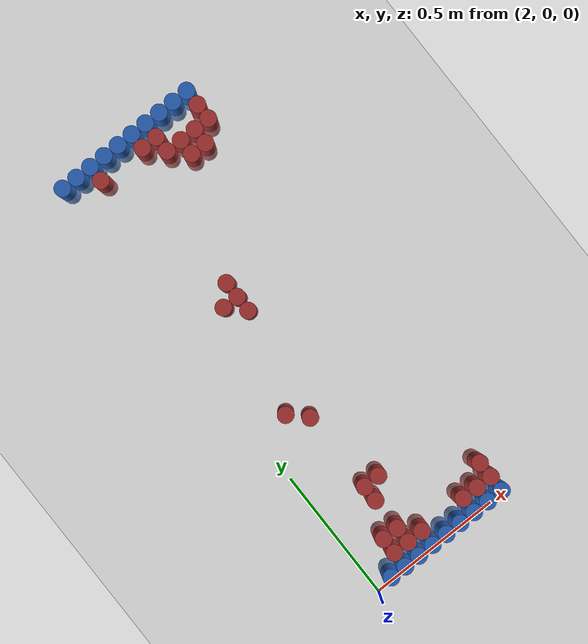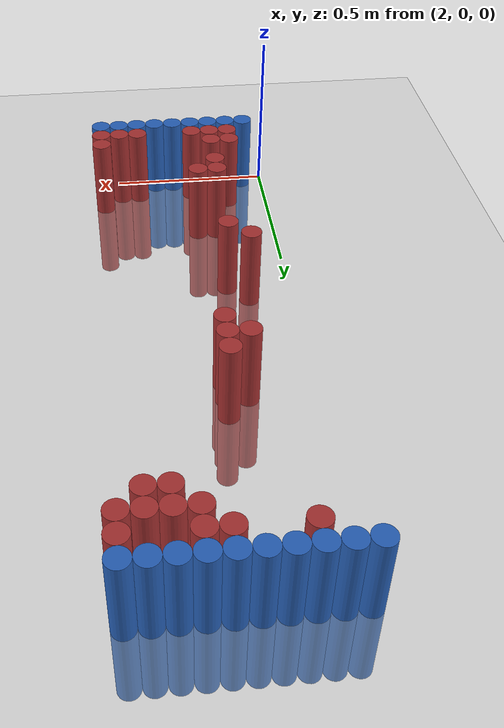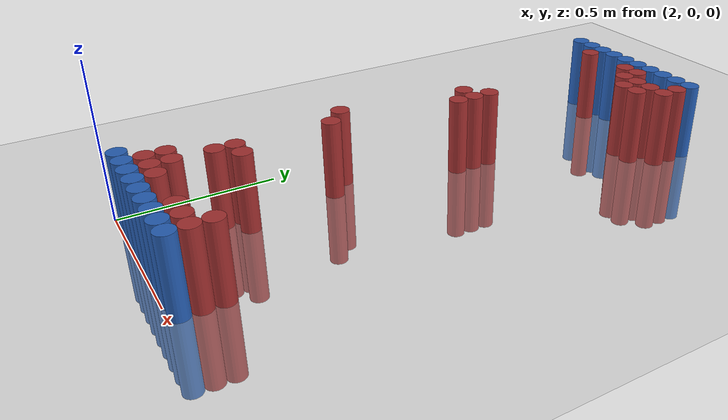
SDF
<sdf version="1.6">
 <world name="default">
  <model name="ground_plane">
   <static>1</static>
   <link name="link">
    <collision name="collision">
     <geometry><plane><normal>0 0 1</normal><size>100 100</size></plane></geometry>
     <surface><friction><ode><mu>100</mu><mu2>50</mu2></ode></friction></surface>
    </collision>
    <visual name="visual">
     <cast_shadows>0</cast_shadows>
     <geometry><plane><normal>0 0 1</normal><size>100 100</size></plane></geometry>
     <material>
      <script><uri>file://media/materials/scripts/gazebo.material</uri><name>Gazebo/Grey</name></script>
     </material>
    </visual>
   </link>
  </model>
  <model name="unit_cylinder_94">
   <static>1</static>
   <pose>2.010000 1.770000 0.000000 0.000000 0.000000 0.000000</pose>
   <link name="link">
    <inertial>
     <mass>1</mass>
     <inertia><ixx>0.145833</ixx><ixy>0</ixy><ixz>0</ixz><iyy>0.145833</iyy><iyz>0</iyz><izz>0.125</izz></inertia>
    </inertial>
    <collision name="collision">
     <geometry><cylinder><radius>0.030000</radius><length>0.5</length></cylinder></geometry>
    </collision>
    <visual name="visual">
     <geometry><cylinder><radius>0.030000</radius><length>0.5</length></cylinder></geometry>
     <material>
      <ambient>0.152000 0.379000 0.720000 1</ambient>
      <diffuse>0.152000 0.379000 0.720000 1</diffuse>
     </material>
     <material>
      <script><name>Gazebo/Grey</name><uri>file://media/materials/scripts/gazebo.material</uri></script>
     </material>
    </visual>
   </link>
  </model>
  <model name="unit_cylinder_95">
   <static>1</static>
   <pose>2.070000 1.770000 0.000000 0.000000 0.000000 0.000000</pose>
   <link name="link">
    <inertial>
     <mass>1</mass>
     <inertia><ixx>0.145833</ixx><ixy>0</ixy><ixz>0</ixz><iyy>0.145833</iyy><iyz>0</iyz><izz>0.125</izz></inertia>
    </inertial>
    <collision name="collision">
     <geometry><cylinder><radius>0.030000</radius><length>0.5</length></cylinder></geometry>
    </collision>
    <visual name="visual">
     <geometry><cylinder><radius>0.030000</radius><length>0.5</length></cylinder></geometry>
     <material>
      <ambient>0.152000 0.379000 0.720000 1</ambient>
      <diffuse>0.152000 0.379000 0.720000 1</diffuse>
     </material>
     <material>
      <script><name>Gazebo/Grey</name><uri>file://media/materials/scripts/gazebo.material</uri></script>
     </material>
    </visual>
   </link>
  </model>
  <model name="unit_cylinder_96">
   <static>1</static>
   <pose>2.130000 1.770000 0.000000 0.000000 0.000000 0.000000</pose>
   <link name="link">
    <inertial>
     <mass>1</mass>
     <inertia><ixx>0.145833</ixx><ixy>0</ixy><ixz>0</ixz><iyy>0.145833</iyy><iyz>0</iyz><izz>0.125</izz></inertia>
    </inertial>
    <collision name="collision">
     <geometry><cylinder><radius>0.030000</radius><length>0.5</length></cylinder></geometry>
    </collision>
    <visual name="visual">
     <geometry><cylinder><radius>0.030000</radius><length>0.5</length></cylinder></geometry>
     <material>
      <ambient>0.152000 0.379000 0.720000 1</ambient>
      <diffuse>0.152000 0.379000 0.720000 1</diffuse>
     </material>
     <material>
      <script><name>Gazebo/Grey</name><uri>file://media/materials/scripts/gazebo.material</uri></script>
     </material>
    </visual>
   </link>
  </model>
  <model name="unit_cylinder_97">
   <static>1</static>
   <pose>2.190000 1.770000 0.000000 0.000000 0.000000 0.000000</pose>
   <link name="link">
    <inertial>
     <mass>1</mass>
     <inertia><ixx>0.145833</ixx><ixy>0</ixy><ixz>0</ixz><iyy>0.145833</iyy><iyz>0</iyz><izz>0.125</izz></inertia>
    </inertial>
    <collision name="collision">
     <geometry><cylinder><radius>0.030000</radius><length>0.5</length></cylinder></geometry>
    </collision>
    <visual name="visual">
     <geometry><cylinder><radius>0.030000</radius><length>0.5</length></cylinder></geometry>
     <material>
      <ambient>0.152000 0.379000 0.720000 1</ambient>
      <diffuse>0.152000 0.379000 0.720000 1</diffuse>
     </material>
     <material>
      <script><name>Gazebo/Grey</name><uri>file://media/materials/scripts/gazebo.material</uri></script>
     </material>
    </visual>
   </link>
  </model>
  <model name="unit_cylinder_98">
   <static>1</static>
   <pose>2.250000 1.770000 0.000000 0.000000 0.000000 0.000000</pose>
   <link name="link">
    <inertial>
     <mass>1</mass>
     <inertia><ixx>0.145833</ixx><ixy>0</ixy><ixz>0</ixz><iyy>0.145833</iyy><iyz>0</iyz><izz>0.125</izz></inertia>
    </inertial>
    <collision name="collision">
     <geometry><cylinder><radius>0.030000</radius><length>0.5</length></cylinder></geometry>
    </collision>
    <visual name="visual">
     <geometry><cylinder><radius>0.030000</radius><length>0.5</length></cylinder></geometry>
     <material>
      <ambient>0.152000 0.379000 0.720000 1</ambient>
      <diffuse>0.152000 0.379000 0.720000 1</diffuse>
     </material>
     <material>
      <script><name>Gazebo/Grey</name><uri>file://media/materials/scripts/gazebo.material</uri></script>
     </material>
    </visual>
   </link>
  </model>
  <model name="unit_cylinder_99">
   <static>1</static>
   <pose>2.310000 1.770000 0.000000 0.000000 0.000000 0.000000</pose>
   <link name="link">
    <inertial>
     <mass>1</mass>
     <inertia><ixx>0.145833</ixx><ixy>0</ixy><ixz>0</ixz><iyy>0.145833</iyy><iyz>0</iyz><izz>0.125</izz></inertia>
    </inertial>
    <collision name="collision">
     <geometry><cylinder><radius>0.030000</radius><length>0.5</length></cylinder></geometry>
    </collision>
    <visual name="visual">
     <geometry><cylinder><radius>0.030000</radius><length>0.5</length></cylinder></geometry>
     <material>
      <ambient>0.152000 0.379000 0.720000 1</ambient>
      <diffuse>0.152000 0.379000 0.720000 1</diffuse>
     </material>
     <material>
      <script><name>Gazebo/Grey</name><uri>file://media/materials/scripts/gazebo.material</uri></script>
     </material>
    </visual>
   </link>
  </model>
  <model name="unit_cylinder_100">
   <static>1</static>
   <pose>2.370000 1.770000 0.000000 0.000000 0.000000 0.000000</pose>
   <link name="link">
    <inertial>
     <mass>1</mass>
     <inertia><ixx>0.145833</ixx><ixy>0</ixy><ixz>0</ixz><iyy>0.145833</iyy><iyz>0</iyz><izz>0.125</izz></inertia>
    </inertial>
    <collision name="collision">
     <geometry><cylinder><radius>0.030000</radius><length>0.5</length></cylinder></geometry>
    </collision>
    <visual name="visual">
     <geometry><cylinder><radius>0.030000</radius><length>0.5</length></cylinder></geometry>
     <material>
      <ambient>0.152000 0.379000 0.720000 1</ambient>
      <diffuse>0.152000 0.379000 0.720000 1</diffuse>
     </material>
     <material>
      <script><name>Gazebo/Grey</name><uri>file://media/materials/scripts/gazebo.material</uri></script>
     </material>
    </visual>
   </link>
  </model>
  <model name="unit_cylinder_101">
   <static>1</static>
   <pose>2.430000 1.770000 0.000000 0.000000 0.000000 0.000000</pose>
   <link name="link">
    <inertial>
     <mass>1</mass>
     <inertia><ixx>0.145833</ixx><ixy>0</ixy><ixz>0</ixz><iyy>0.145833</iyy><iyz>0</iyz><izz>0.125</izz></inertia>
    </inertial>
    <collision name="collision">
     <geometry><cylinder><radius>0.030000</radius><length>0.5</length></cylinder></geometry>
    </collision>
    <visual name="visual">
     <geometry><cylinder><radius>0.030000</radius><length>0.5</length></cylinder></geometry>
     <material>
      <ambient>0.152000 0.379000 0.720000 1</ambient>
      <diffuse>0.152000 0.379000 0.720000 1</diffuse>
     </material>
     <material>
      <script><name>Gazebo/Grey</name><uri>file://media/materials/scripts/gazebo.material</uri></script>
     </material>
    </visual>
   </link>
  </model>
  <model name="unit_cylinder_102">
   <static>1</static>
   <pose>2.490000 1.770000 0.000000 0.000000 0.000000 0.000000</pose>
   <link name="link">
    <inertial>
     <mass>1</mass>
     <inertia><ixx>0.145833</ixx><ixy>0</ixy><ixz>0</ixz><iyy>0.145833</iyy><iyz>0</iyz><izz>0.125</izz></inertia>
    </inertial>
    <collision name="collision">
     <geometry><cylinder><radius>0.030000</radius><length>0.5</length></cylinder></geometry>
    </collision>
    <visual name="visual">
     <geometry><cylinder><radius>0.030000</radius><length>0.5</length></cylinder></geometry>
     <material>
      <ambient>0.152000 0.379000 0.720000 1</ambient>
      <diffuse>0.152000 0.379000 0.720000 1</diffuse>
     </material>
     <material>
      <script><name>Gazebo/Grey</name><uri>file://media/materials/scripts/gazebo.material</uri></script>
     </material>
    </visual>
   </link>
  </model>
  <model name="unit_cylinder_103">
   <static>1</static>
   <pose>2.550000 1.770000 0.000000 0.000000 0.000000 0.000000</pose>
   <link name="link">
    <inertial>
     <mass>1</mass>
     <inertia><ixx>0.145833</ixx><ixy>0</ixy><ixz>0</ixz><iyy>0.145833</iyy><iyz>0</iyz><izz>0.125</izz></inertia>
    </inertial>
    <collision name="collision">
     <geometry><cylinder><radius>0.030000</radius><length>0.5</length></cylinder></geometry>
    </collision>
    <visual name="visual">
     <geometry><cylinder><radius>0.030000</radius><length>0.5</length></cylinder></geometry>
     <material>
      <ambient>0.152000 0.379000 0.720000 1</ambient>
      <diffuse>0.152000 0.379000 0.720000 1</diffuse>
     </material>
     <material>
      <script><name>Gazebo/Grey</name><uri>file://media/materials/scripts/gazebo.material</uri></script>
     </material>
    </visual>
   </link>
  </model>
  <model name="unit_cylinder_125">
   <static>1</static>
   <pose>2.130000 1.710000 0.000000 0.000000 0.000000 0.000000</pose>
   <link name="link">
    <inertial>
     <mass>1</mass>
     <inertia><ixx>0.145833</ixx><ixy>0</ixy><ixz>0</ixz><iyy>0.145833</iyy><iyz>0</iyz><izz>0.125</izz></inertia>
    </inertial>
    <collision name="collision">
     <geometry><cylinder><radius>0.030000</radius><length>0.5</length></cylinder></geometry>
    </collision>
    <visual name="visual">
     <geometry><cylinder><radius>0.030000</radius><length>0.5</length></cylinder></geometry>
     <material>
      <ambient>0.648000 0.192000 0.192000 1</ambient>
      <diffuse>0.648000 0.192000 0.192000 1</diffuse>
     </material>
     <material>
      <script><name>Gazebo/Grey</name><uri>file://media/materials/scripts/gazebo.material</uri></script>
     </material>
    </visual>
   </link>
  </model>
  <model name="unit_cylinder_126">
   <static>1</static>
   <pose>2.310000 1.710000 0.000000 0.000000 0.000000 0.000000</pose>
   <link name="link">
    <inertial>
     <mass>1</mass>
     <inertia><ixx>0.145833</ixx><ixy>0</ixy><ixz>0</ixz><iyy>0.145833</iyy><iyz>0</iyz><izz>0.125</izz></inertia>
    </inertial>
    <collision name="collision">
     <geometry><cylinder><radius>0.030000</radius><length>0.5</length></cylinder></geometry>
    </collision>
    <visual name="visual">
     <geometry><cylinder><radius>0.030000</radius><length>0.5</length></cylinder></geometry>
     <material>
      <ambient>0.648000 0.192000 0.192000 1</ambient>
      <diffuse>0.648000 0.192000 0.192000 1</diffuse>
     </material>
     <material>
      <script><name>Gazebo/Grey</name><uri>file://media/materials/scripts/gazebo.material</uri></script>
     </material>
    </visual>
   </link>
  </model>
  <model name="unit_cylinder_127">
   <static>1</static>
   <pose>2.370000 1.710000 0.000000 0.000000 0.000000 0.000000</pose>
   <link name="link">
    <inertial>
     <mass>1</mass>
     <inertia><ixx>0.145833</ixx><ixy>0</ixy><ixz>0</ixz><iyy>0.145833</iyy><iyz>0</iyz><izz>0.125</izz></inertia>
    </inertial>
    <collision name="collision">
     <geometry><cylinder><radius>0.030000</radius><length>0.5</length></cylinder></geometry>
    </collision>
    <visual name="visual">
     <geometry><cylinder><radius>0.030000</radius><length>0.5</length></cylinder></geometry>
     <material>
      <ambient>0.648000 0.192000 0.192000 1</ambient>
      <diffuse>0.648000 0.192000 0.192000 1</diffuse>
     </material>
     <material>
      <script><name>Gazebo/Grey</name><uri>file://media/materials/scripts/gazebo.material</uri></script>
     </material>
    </visual>
   </link>
  </model>
  <model name="unit_cylinder_128">
   <static>1</static>
   <pose>2.550000 1.710000 0.000000 0.000000 0.000000 0.000000</pose>
   <link name="link">
    <inertial>
     <mass>1</mass>
     <inertia><ixx>0.145833</ixx><ixy>0</ixy><ixz>0</ixz><iyy>0.145833</iyy><iyz>0</iyz><izz>0.125</izz></inertia>
    </inertial>
    <collision name="collision">
     <geometry><cylinder><radius>0.030000</radius><length>0.5</length></cylinder></geometry>
    </collision>
    <visual name="visual">
     <geometry><cylinder><radius>0.030000</radius><length>0.5</length></cylinder></geometry>
     <material>
      <ambient>0.648000 0.192000 0.192000 1</ambient>
      <diffuse>0.648000 0.192000 0.192000 1</diffuse>
     </material>
     <material>
      <script><name>Gazebo/Grey</name><uri>file://media/materials/scripts/gazebo.material</uri></script>
     </material>
    </visual>
   </link>
  </model>
  <model name="unit_cylinder_143">
   <static>1</static>
   <pose>2.370000 1.650000 0.000000 0.000000 0.000000 0.000000</pose>
   <link name="link">
    <inertial>
     <mass>1</mass>
     <inertia><ixx>0.145833</ixx><ixy>0</ixy><ixz>0</ixz><iyy>0.145833</iyy><iyz>0</iyz><izz>0.125</izz></inertia>
    </inertial>
    <collision name="collision">
     <geometry><cylinder><radius>0.030000</radius><length>0.5</length></cylinder></geometry>
    </collision>
    <visual name="visual">
     <geometry><cylinder><radius>0.030000</radius><length>0.5</length></cylinder></geometry>
     <material>
      <ambient>0.648000 0.192000 0.192000 1</ambient>
      <diffuse>0.648000 0.192000 0.192000 1</diffuse>
     </material>
     <material>
      <script><name>Gazebo/Grey</name><uri>file://media/materials/scripts/gazebo.material</uri></script>
     </material>
    </visual>
   </link>
  </model>
  <model name="unit_cylinder_144">
   <static>1</static>
   <pose>2.430000 1.650000 0.000000 0.000000 0.000000 0.000000</pose>
   <link name="link">
    <inertial>
     <mass>1</mass>
     <inertia><ixx>0.145833</ixx><ixy>0</ixy><ixz>0</ixz><iyy>0.145833</iyy><iyz>0</iyz><izz>0.125</izz></inertia>
    </inertial>
    <collision name="collision">
     <geometry><cylinder><radius>0.030000</radius><length>0.5</length></cylinder></geometry>
    </collision>
    <visual name="visual">
     <geometry><cylinder><radius>0.030000</radius><length>0.5</length></cylinder></geometry>
     <material>
      <ambient>0.648000 0.192000 0.192000 1</ambient>
      <diffuse>0.648000 0.192000 0.192000 1</diffuse>
     </material>
     <material>
      <script><name>Gazebo/Grey</name><uri>file://media/materials/scripts/gazebo.material</uri></script>
     </material>
    </visual>
   </link>
  </model>
  <model name="unit_cylinder_145">
   <static>1</static>
   <pose>2.490000 1.650000 0.000000 0.000000 0.000000 0.000000</pose>
   <link name="link">
    <inertial>
     <mass>1</mass>
     <inertia><ixx>0.145833</ixx><ixy>0</ixy><ixz>0</ixz><iyy>0.145833</iyy><iyz>0</iyz><izz>0.125</izz></inertia>
    </inertial>
    <collision name="collision">
     <geometry><cylinder><radius>0.030000</radius><length>0.5</length></cylinder></geometry>
    </collision>
    <visual name="visual">
     <geometry><cylinder><radius>0.030000</radius><length>0.5</length></cylinder></geometry>
     <material>
      <ambient>0.648000 0.192000 0.192000 1</ambient>
      <diffuse>0.648000 0.192000 0.192000 1</diffuse>
     </material>
     <material>
      <script><name>Gazebo/Grey</name><uri>file://media/materials/scripts/gazebo.material</uri></script>
     </material>
    </visual>
   </link>
  </model>
  <model name="unit_cylinder_146">
   <static>1</static>
   <pose>2.550000 1.650000 0.000000 0.000000 0.000000 0.000000</pose>
   <link name="link">
    <inertial>
     <mass>1</mass>
     <inertia><ixx>0.145833</ixx><ixy>0</ixy><ixz>0</ixz><iyy>0.145833</iyy><iyz>0</iyz><izz>0.125</izz></inertia>
    </inertial>
    <collision name="collision">
     <geometry><cylinder><radius>0.030000</radius><length>0.5</length></cylinder></geometry>
    </collision>
    <visual name="visual">
     <geometry><cylinder><radius>0.030000</radius><length>0.5</length></cylinder></geometry>
     <material>
      <ambient>0.648000 0.192000 0.192000 1</ambient>
      <diffuse>0.648000 0.192000 0.192000 1</diffuse>
     </material>
     <material>
      <script><name>Gazebo/Grey</name><uri>file://media/materials/scripts/gazebo.material</uri></script>
     </material>
    </visual>
   </link>
  </model>
  <model name="unit_cylinder_154">
   <static>1</static>
   <pose>2.430000 1.590000 0.000000 0.000000 0.000000 0.000000</pose>
   <link name="link">
    <inertial>
     <mass>1</mass>
     <inertia><ixx>0.145833</ixx><ixy>0</ixy><ixz>0</ixz><iyy>0.145833</iyy><iyz>0</iyz><izz>0.125</izz></inertia>
    </inertial>
    <collision name="collision">
     <geometry><cylinder><radius>0.030000</radius><length>0.5</length></cylinder></geometry>
    </collision>
    <visual name="visual">
     <geometry><cylinder><radius>0.030000</radius><length>0.5</length></cylinder></geometry>
     <material>
      <ambient>0.648000 0.192000 0.192000 1</ambient>
      <diffuse>0.648000 0.192000 0.192000 1</diffuse>
     </material>
     <material>
      <script><name>Gazebo/Grey</name><uri>file://media/materials/scripts/gazebo.material</uri></script>
     </material>
    </visual>
   </link>
  </model>
  <model name="unit_cylinder_155">
   <static>1</static>
   <pose>2.490000 1.590000 0.000000 0.000000 0.000000 0.000000</pose>
   <link name="link">
    <inertial>
     <mass>1</mass>
     <inertia><ixx>0.145833</ixx><ixy>0</ixy><ixz>0</ixz><iyy>0.145833</iyy><iyz>0</iyz><izz>0.125</izz></inertia>
    </inertial>
    <collision name="collision">
     <geometry><cylinder><radius>0.030000</radius><length>0.5</length></cylinder></geometry>
    </collision>
    <visual name="visual">
     <geometry><cylinder><radius>0.030000</radius><length>0.5</length></cylinder></geometry>
     <material>
      <ambient>0.648000 0.192000 0.192000 1</ambient>
      <diffuse>0.648000 0.192000 0.192000 1</diffuse>
     </material>
     <material>
      <script><name>Gazebo/Grey</name><uri>file://media/materials/scripts/gazebo.material</uri></script>
     </material>
    </visual>
   </link>
  </model>
  <model name="unit_cylinder_178">
   <static>1</static>
   <pose>2.250000 1.170000 0.000000 0.000000 0.000000 0.000000</pose>
   <link name="link">
    <inertial>
     <mass>1</mass>
     <inertia><ixx>0.145833</ixx><ixy>0</ixy><ixz>0</ixz><iyy>0.145833</iyy><iyz>0</iyz><izz>0.125</izz></inertia>
    </inertial>
    <collision name="collision">
     <geometry><cylinder><radius>0.030000</radius><length>0.5</length></cylinder></geometry>
    </collision>
    <visual name="visual">
     <geometry><cylinder><radius>0.030000</radius><length>0.5</length></cylinder></geometry>
     <material>
      <ambient>0.648000 0.192000 0.192000 1</ambient>
      <diffuse>0.648000 0.192000 0.192000 1</diffuse>
     </material>
     <material>
      <script><name>Gazebo/Grey</name><uri>file://media/materials/scripts/gazebo.material</uri></script>
     </material>
    </visual>
   </link>
  </model>
  <model name="unit_cylinder_183">
   <static>1</static>
   <pose>2.190000 1.110000 0.000000 0.000000 0.000000 0.000000</pose>
   <link name="link">
    <inertial>
     <mass>1</mass>
     <inertia><ixx>0.145833</ixx><ixy>0</ixy><ixz>0</ixz><iyy>0.145833</iyy><iyz>0</iyz><izz>0.125</izz></inertia>
    </inertial>
    <collision name="collision">
     <geometry><cylinder><radius>0.030000</radius><length>0.5</length></cylinder></geometry>
    </collision>
    <visual name="visual">
     <geometry><cylinder><radius>0.030000</radius><length>0.5</length></cylinder></geometry>
     <material>
      <ambient>0.648000 0.192000 0.192000 1</ambient>
      <diffuse>0.648000 0.192000 0.192000 1</diffuse>
     </material>
     <material>
      <script><name>Gazebo/Grey</name><uri>file://media/materials/scripts/gazebo.material</uri></script>
     </material>
    </visual>
   </link>
  </model>
  <model name="unit_cylinder_184">
   <static>1</static>
   <pose>2.250000 1.110000 0.000000 0.000000 0.000000 0.000000</pose>
   <link name="link">
    <inertial>
     <mass>1</mass>
     <inertia><ixx>0.145833</ixx><ixy>0</ixy><ixz>0</ixz><iyy>0.145833</iyy><iyz>0</iyz><izz>0.125</izz></inertia>
    </inertial>
    <collision name="collision">
     <geometry><cylinder><radius>0.030000</radius><length>0.5</length></cylinder></geometry>
    </collision>
    <visual name="visual">
     <geometry><cylinder><radius>0.030000</radius><length>0.5</length></cylinder></geometry>
     <material>
      <ambient>0.648000 0.192000 0.192000 1</ambient>
      <diffuse>0.648000 0.192000 0.192000 1</diffuse>
     </material>
     <material>
      <script><name>Gazebo/Grey</name><uri>file://media/materials/scripts/gazebo.material</uri></script>
     </material>
    </visual>
   </link>
  </model>
  <model name="unit_cylinder_189">
   <static>1</static>
   <pose>2.250000 1.050000 0.000000 0.000000 0.000000 0.000000</pose>
   <link name="link">
    <inertial>
     <mass>1</mass>
     <inertia><ixx>0.145833</ixx><ixy>0</ixy><ixz>0</ixz><iyy>0.145833</iyy><iyz>0</iyz><izz>0.125</izz></inertia>
    </inertial>
    <collision name="collision">
     <geometry><cylinder><radius>0.030000</radius><length>0.5</length></cylinder></geometry>
    </collision>
    <visual name="visual">
     <geometry><cylinder><radius>0.030000</radius><length>0.5</length></cylinder></geometry>
     <material>
      <ambient>0.648000 0.192000 0.192000 1</ambient>
      <diffuse>0.648000 0.192000 0.192000 1</diffuse>
     </material>
     <material>
      <script><name>Gazebo/Grey</name><uri>file://media/materials/scripts/gazebo.material</uri></script>
     </material>
    </visual>
   </link>
  </model>
  <model name="unit_cylinder_198">
   <static>1</static>
   <pose>2.130000 0.690000 0.000000 0.000000 0.000000 0.000000</pose>
   <link name="link">
    <inertial>
     <mass>1</mass>
     <inertia><ixx>0.145833</ixx><ixy>0</ixy><ixz>0</ixz><iyy>0.145833</iyy><iyz>0</iyz><izz>0.125</izz></inertia>
    </inertial>
    <collision name="collision">
     <geometry><cylinder><radius>0.030000</radius><length>0.5</length></cylinder></geometry>
    </collision>
    <visual name="visual">
     <geometry><cylinder><radius>0.030000</radius><length>0.5</length></cylinder></geometry>
     <material>
      <ambient>0.648000 0.192000 0.192000 1</ambient>
      <diffuse>0.648000 0.192000 0.192000 1</diffuse>
     </material>
     <material>
      <script><name>Gazebo/Grey</name><uri>file://media/materials/scripts/gazebo.material</uri></script>
     </material>
    </visual>
   </link>
  </model>
  <model name="unit_cylinder_200">
   <static>1</static>
   <pose>2.190000 0.630000 0.000000 0.000000 0.000000 0.000000</pose>
   <link name="link">
    <inertial>
     <mass>1</mass>
     <inertia><ixx>0.145833</ixx><ixy>0</ixy><ixz>0</ixz><iyy>0.145833</iyy><iyz>0</iyz><izz>0.125</izz></inertia>
    </inertial>
    <collision name="collision">
     <geometry><cylinder><radius>0.030000</radius><length>0.5</length></cylinder></geometry>
    </collision>
    <visual name="visual">
     <geometry><cylinder><radius>0.030000</radius><length>0.5</length></cylinder></geometry>
     <material>
      <ambient>0.648000 0.192000 0.192000 1</ambient>
      <diffuse>0.648000 0.192000 0.192000 1</diffuse>
     </material>
     <material>
      <script><name>Gazebo/Grey</name><uri>file://media/materials/scripts/gazebo.material</uri></script>
     </material>
    </visual>
   </link>
  </model>
  <model name="unit_cylinder_210">
   <static>1</static>
   <pose>2.190000 0.330000 0.000000 0.000000 0.000000 0.000000</pose>
   <link name="link">
    <inertial>
     <mass>1</mass>
     <inertia><ixx>0.145833</ixx><ixy>0</ixy><ixz>0</ixz><iyy>0.145833</iyy><iyz>0</iyz><izz>0.125</izz></inertia>
    </inertial>
    <collision name="collision">
     <geometry><cylinder><radius>0.030000</radius><length>0.5</length></cylinder></geometry>
    </collision>
    <visual name="visual">
     <geometry><cylinder><radius>0.030000</radius><length>0.5</length></cylinder></geometry>
     <material>
      <ambient>0.648000 0.192000 0.192000 1</ambient>
      <diffuse>0.648000 0.192000 0.192000 1</diffuse>
     </material>
     <material>
      <script><name>Gazebo/Grey</name><uri>file://media/materials/scripts/gazebo.material</uri></script>
     </material>
    </visual>
   </link>
  </model>
  <model name="unit_cylinder_211">
   <static>1</static>
   <pose>2.250000 0.330000 0.000000 0.000000 0.000000 0.000000</pose>
   <link name="link">
    <inertial>
     <mass>1</mass>
     <inertia><ixx>0.145833</ixx><ixy>0</ixy><ixz>0</ixz><iyy>0.145833</iyy><iyz>0</iyz><izz>0.125</izz></inertia>
    </inertial>
    <collision name="collision">
     <geometry><cylinder><radius>0.030000</radius><length>0.5</length></cylinder></geometry>
    </collision>
    <visual name="visual">
     <geometry><cylinder><radius>0.030000</radius><length>0.5</length></cylinder></geometry>
     <material>
      <ambient>0.648000 0.192000 0.192000 1</ambient>
      <diffuse>0.648000 0.192000 0.192000 1</diffuse>
     </material>
     <material>
      <script><name>Gazebo/Grey</name><uri>file://media/materials/scripts/gazebo.material</uri></script>
     </material>
    </visual>
   </link>
  </model>
  <model name="unit_cylinder_216">
   <static>1</static>
   <pose>2.190000 0.270000 0.000000 0.000000 0.000000 0.000000</pose>
   <link name="link">
    <inertial>
     <mass>1</mass>
     <inertia><ixx>0.145833</ixx><ixy>0</ixy><ixz>0</ixz><iyy>0.145833</iyy><iyz>0</iyz><izz>0.125</izz></inertia>
    </inertial>
    <collision name="collision">
     <geometry><cylinder><radius>0.030000</radius><length>0.5</length></cylinder></geometry>
    </collision>
    <visual name="visual">
     <geometry><cylinder><radius>0.030000</radius><length>0.5</length></cylinder></geometry>
     <material>
      <ambient>0.648000 0.192000 0.192000 1</ambient>
      <diffuse>0.648000 0.192000 0.192000 1</diffuse>
     </material>
     <material>
      <script><name>Gazebo/Grey</name><uri>file://media/materials/scripts/gazebo.material</uri></script>
     </material>
    </visual>
   </link>
  </model>
  <model name="unit_cylinder_223">
   <static>1</static>
   <pose>2.130000 0.150000 0.000000 0.000000 0.000000 0.000000</pose>
   <link name="link">
    <inertial>
     <mass>1</mass>
     <inertia><ixx>0.145833</ixx><ixy>0</ixy><ixz>0</ixz><iyy>0.145833</iyy><iyz>0</iyz><izz>0.125</izz></inertia>
    </inertial>
    <collision name="collision">
     <geometry><cylinder><radius>0.030000</radius><length>0.5</length></cylinder></geometry>
    </collision>
    <visual name="visual">
     <geometry><cylinder><radius>0.030000</radius><length>0.5</length></cylinder></geometry>
     <material>
      <ambient>0.648000 0.192000 0.192000 1</ambient>
      <diffuse>0.648000 0.192000 0.192000 1</diffuse>
     </material>
     <material>
      <script><name>Gazebo/Grey</name><uri>file://media/materials/scripts/gazebo.material</uri></script>
     </material>
    </visual>
   </link>
  </model>
  <model name="unit_cylinder_224">
   <static>1</static>
   <pose>2.190000 0.150000 0.000000 0.000000 0.000000 0.000000</pose>
   <link name="link">
    <inertial>
     <mass>1</mass>
     <inertia><ixx>0.145833</ixx><ixy>0</ixy><ixz>0</ixz><iyy>0.145833</iyy><iyz>0</iyz><izz>0.125</izz></inertia>
    </inertial>
    <collision name="collision">
     <geometry><cylinder><radius>0.030000</radius><length>0.5</length></cylinder></geometry>
    </collision>
    <visual name="visual">
     <geometry><cylinder><radius>0.030000</radius><length>0.5</length></cylinder></geometry>
     <material>
      <ambient>0.648000 0.192000 0.192000 1</ambient>
      <diffuse>0.648000 0.192000 0.192000 1</diffuse>
     </material>
     <material>
      <script><name>Gazebo/Grey</name><uri>file://media/materials/scripts/gazebo.material</uri></script>
     </material>
    </visual>
   </link>
  </model>
  <model name="unit_cylinder_225">
   <static>1</static>
   <pose>2.550000 0.150000 0.000000 0.000000 0.000000 0.000000</pose>
   <link name="link">
    <inertial>
     <mass>1</mass>
     <inertia><ixx>0.145833</ixx><ixy>0</ixy><ixz>0</ixz><iyy>0.145833</iyy><iyz>0</iyz><izz>0.125</izz></inertia>
    </inertial>
    <collision name="collision">
     <geometry><cylinder><radius>0.030000</radius><length>0.5</length></cylinder></geometry>
    </collision>
    <visual name="visual">
     <geometry><cylinder><radius>0.030000</radius><length>0.5</length></cylinder></geometry>
     <material>
      <ambient>0.648000 0.192000 0.192000 1</ambient>
      <diffuse>0.648000 0.192000 0.192000 1</diffuse>
     </material>
     <material>
      <script><name>Gazebo/Grey</name><uri>file://media/materials/scripts/gazebo.material</uri></script>
     </material>
    </visual>
   </link>
  </model>
  <model name="unit_cylinder_230">
   <static>1</static>
   <pose>2.130000 0.090000 0.000000 0.000000 0.000000 0.000000</pose>
   <link name="link">
    <inertial>
     <mass>1</mass>
     <inertia><ixx>0.145833</ixx><ixy>0</ixy><ixz>0</ixz><iyy>0.145833</iyy><iyz>0</iyz><izz>0.125</izz></inertia>
    </inertial>
    <collision name="collision">
     <geometry><cylinder><radius>0.030000</radius><length>0.5</length></cylinder></geometry>
    </collision>
    <visual name="visual">
     <geometry><cylinder><radius>0.030000</radius><length>0.5</length></cylinder></geometry>
     <material>
      <ambient>0.648000 0.192000 0.192000 1</ambient>
      <diffuse>0.648000 0.192000 0.192000 1</diffuse>
     </material>
     <material>
      <script><name>Gazebo/Grey</name><uri>file://media/materials/scripts/gazebo.material</uri></script>
     </material>
    </visual>
   </link>
  </model>
  <model name="unit_cylinder_231">
   <static>1</static>
   <pose>2.190000 0.090000 0.000000 0.000000 0.000000 0.000000</pose>
   <link name="link">
    <inertial>
     <mass>1</mass>
     <inertia><ixx>0.145833</ixx><ixy>0</ixy><ixz>0</ixz><iyy>0.145833</iyy><iyz>0</iyz><izz>0.125</izz></inertia>
    </inertial>
    <collision name="collision">
     <geometry><cylinder><radius>0.030000</radius><length>0.5</length></cylinder></geometry>
    </collision>
    <visual name="visual">
     <geometry><cylinder><radius>0.030000</radius><length>0.5</length></cylinder></geometry>
     <material>
      <ambient>0.648000 0.192000 0.192000 1</ambient>
      <diffuse>0.648000 0.192000 0.192000 1</diffuse>
     </material>
     <material>
      <script><name>Gazebo/Grey</name><uri>file://media/materials/scripts/gazebo.material</uri></script>
     </material>
    </visual>
   </link>
  </model>
  <model name="unit_cylinder_232">
   <static>1</static>
   <pose>2.250000 0.090000 0.000000 0.000000 0.000000 0.000000</pose>
   <link name="link">
    <inertial>
     <mass>1</mass>
     <inertia><ixx>0.145833</ixx><ixy>0</ixy><ixz>0</ixz><iyy>0.145833</iyy><iyz>0</iyz><izz>0.125</izz></inertia>
    </inertial>
    <collision name="collision">
     <geometry><cylinder><radius>0.030000</radius><length>0.5</length></cylinder></geometry>
    </collision>
    <visual name="visual">
     <geometry><cylinder><radius>0.030000</radius><length>0.5</length></cylinder></geometry>
     <material>
      <ambient>0.648000 0.192000 0.192000 1</ambient>
      <diffuse>0.648000 0.192000 0.192000 1</diffuse>
     </material>
     <material>
      <script><name>Gazebo/Grey</name><uri>file://media/materials/scripts/gazebo.material</uri></script>
     </material>
    </visual>
   </link>
  </model>
  <model name="unit_cylinder_233">
   <static>1</static>
   <pose>2.430000 0.090000 0.000000 0.000000 0.000000 0.000000</pose>
   <link name="link">
    <inertial>
     <mass>1</mass>
     <inertia><ixx>0.145833</ixx><ixy>0</ixy><ixz>0</ixz><iyy>0.145833</iyy><iyz>0</iyz><izz>0.125</izz></inertia>
    </inertial>
    <collision name="collision">
     <geometry><cylinder><radius>0.030000</radius><length>0.5</length></cylinder></geometry>
    </collision>
    <visual name="visual">
     <geometry><cylinder><radius>0.030000</radius><length>0.5</length></cylinder></geometry>
     <material>
      <ambient>0.648000 0.192000 0.192000 1</ambient>
      <diffuse>0.648000 0.192000 0.192000 1</diffuse>
     </material>
     <material>
      <script><name>Gazebo/Grey</name><uri>file://media/materials/scripts/gazebo.material</uri></script>
     </material>
    </visual>
   </link>
  </model>
  <model name="unit_cylinder_234">
   <static>1</static>
   <pose>2.490000 0.090000 0.000000 0.000000 0.000000 0.000000</pose>
   <link name="link">
    <inertial>
     <mass>1</mass>
     <inertia><ixx>0.145833</ixx><ixy>0</ixy><ixz>0</ixz><iyy>0.145833</iyy><iyz>0</iyz><izz>0.125</izz></inertia>
    </inertial>
    <collision name="collision">
     <geometry><cylinder><radius>0.030000</radius><length>0.5</length></cylinder></geometry>
    </collision>
    <visual name="visual">
     <geometry><cylinder><radius>0.030000</radius><length>0.5</length></cylinder></geometry>
     <material>
      <ambient>0.648000 0.192000 0.192000 1</ambient>
      <diffuse>0.648000 0.192000 0.192000 1</diffuse>
     </material>
     <material>
      <script><name>Gazebo/Grey</name><uri>file://media/materials/scripts/gazebo.material</uri></script>
     </material>
    </visual>
   </link>
  </model>
  <model name="unit_cylinder_235">
   <static>1</static>
   <pose>2.550000 0.090000 0.000000 0.000000 0.000000 0.000000</pose>
   <link name="link">
    <inertial>
     <mass>1</mass>
     <inertia><ixx>0.145833</ixx><ixy>0</ixy><ixz>0</ixz><iyy>0.145833</iyy><iyz>0</iyz><izz>0.125</izz></inertia>
    </inertial>
    <collision name="collision">
     <geometry><cylinder><radius>0.030000</radius><length>0.5</length></cylinder></geometry>
    </collision>
    <visual name="visual">
     <geometry><cylinder><radius>0.030000</radius><length>0.5</length></cylinder></geometry>
     <material>
      <ambient>0.648000 0.192000 0.192000 1</ambient>
      <diffuse>0.648000 0.192000 0.192000 1</diffuse>
     </material>
     <material>
      <script><name>Gazebo/Grey</name><uri>file://media/materials/scripts/gazebo.material</uri></script>
     </material>
    </visual>
   </link>
  </model>
  <model name="unit_cylinder_251">
   <static>1</static>
   <pose>2.070000 0.030000 0.000000 0.000000 0.000000 0.000000</pose>
   <link name="link">
    <inertial>
     <mass>1</mass>
     <inertia><ixx>0.145833</ixx><ixy>0</ixy><ixz>0</ixz><iyy>0.145833</iyy><iyz>0</iyz><izz>0.125</izz></inertia>
    </inertial>
    <collision name="collision">
     <geometry><cylinder><radius>0.030000</radius><length>0.5</length></cylinder></geometry>
    </collision>
    <visual name="visual">
     <geometry><cylinder><radius>0.030000</radius><length>0.5</length></cylinder></geometry>
     <material>
      <ambient>0.152000 0.379000 0.720000 1</ambient>
      <diffuse>0.152000 0.379000 0.720000 1</diffuse>
     </material>
     <material>
      <script><name>Gazebo/Grey</name><uri>file://media/materials/scripts/gazebo.material</uri></script>
     </material>
    </visual>
   </link>
  </model>
  <model name="unit_cylinder_252">
   <static>1</static>
   <pose>2.130000 0.030000 0.000000 0.000000 0.000000 0.000000</pose>
   <link name="link">
    <inertial>
     <mass>1</mass>
     <inertia><ixx>0.145833</ixx><ixy>0</ixy><ixz>0</ixz><iyy>0.145833</iyy><iyz>0</iyz><izz>0.125</izz></inertia>
    </inertial>
    <collision name="collision">
     <geometry><cylinder><radius>0.030000</radius><length>0.5</length></cylinder></geometry>
    </collision>
    <visual name="visual">
     <geometry><cylinder><radius>0.030000</radius><length>0.5</length></cylinder></geometry>
     <material>
      <ambient>0.152000 0.379000 0.720000 1</ambient>
      <diffuse>0.152000 0.379000 0.720000 1</diffuse>
     </material>
     <material>
      <script><name>Gazebo/Grey</name><uri>file://media/materials/scripts/gazebo.material</uri></script>
     </material>
    </visual>
   </link>
  </model>
  <model name="unit_cylinder_253">
   <static>1</static>
   <pose>2.190000 0.030000 0.000000 0.000000 0.000000 0.000000</pose>
   <link name="link">
    <inertial>
     <mass>1</mass>
     <inertia><ixx>0.145833</ixx><ixy>0</ixy><ixz>0</ixz><iyy>0.145833</iyy><iyz>0</iyz><izz>0.125</izz></inertia>
    </inertial>
    <collision name="collision">
     <geometry><cylinder><radius>0.030000</radius><length>0.5</length></cylinder></geometry>
    </collision>
    <visual name="visual">
     <geometry><cylinder><radius>0.030000</radius><length>0.5</length></cylinder></geometry>
     <material>
      <ambient>0.152000 0.379000 0.720000 1</ambient>
      <diffuse>0.152000 0.379000 0.720000 1</diffuse>
     </material>
     <material>
      <script><name>Gazebo/Grey</name><uri>file://media/materials/scripts/gazebo.material</uri></script>
     </material>
    </visual>
   </link>
  </model>
  <model name="unit_cylinder_254">
   <static>1</static>
   <pose>2.250000 0.030000 0.000000 0.000000 0.000000 0.000000</pose>
   <link name="link">
    <inertial>
     <mass>1</mass>
     <inertia><ixx>0.145833</ixx><ixy>0</ixy><ixz>0</ixz><iyy>0.145833</iyy><iyz>0</iyz><izz>0.125</izz></inertia>
    </inertial>
    <collision name="collision">
     <geometry><cylinder><radius>0.030000</radius><length>0.5</length></cylinder></geometry>
    </collision>
    <visual name="visual">
     <geometry><cylinder><radius>0.030000</radius><length>0.5</length></cylinder></geometry>
     <material>
      <ambient>0.152000 0.379000 0.720000 1</ambient>
      <diffuse>0.152000 0.379000 0.720000 1</diffuse>
     </material>
     <material>
      <script><name>Gazebo/Grey</name><uri>file://media/materials/scripts/gazebo.material</uri></script>
     </material>
    </visual>
   </link>
  </model>
  <model name="unit_cylinder_255">
   <static>1</static>
   <pose>2.310000 0.030000 0.000000 0.000000 0.000000 0.000000</pose>
   <link name="link">
    <inertial>
     <mass>1</mass>
     <inertia><ixx>0.145833</ixx><ixy>0</ixy><ixz>0</ixz><iyy>0.145833</iyy><iyz>0</iyz><izz>0.125</izz></inertia>
    </inertial>
    <collision name="collision">
     <geometry><cylinder><radius>0.030000</radius><length>0.5</length></cylinder></geometry>
    </collision>
    <visual name="visual">
     <geometry><cylinder><radius>0.030000</radius><length>0.5</length></cylinder></geometry>
     <material>
      <ambient>0.152000 0.379000 0.720000 1</ambient>
      <diffuse>0.152000 0.379000 0.720000 1</diffuse>
     </material>
     <material>
      <script><name>Gazebo/Grey</name><uri>file://media/materials/scripts/gazebo.material</uri></script>
     </material>
    </visual>
   </link>
  </model>
  <model name="unit_cylinder_256">
   <static>1</static>
   <pose>2.370000 0.030000 0.000000 0.000000 0.000000 0.000000</pose>
   <link name="link">
    <inertial>
     <mass>1</mass>
     <inertia><ixx>0.145833</ixx><ixy>0</ixy><ixz>0</ixz><iyy>0.145833</iyy><iyz>0</iyz><izz>0.125</izz></inertia>
    </inertial>
    <collision name="collision">
     <geometry><cylinder><radius>0.030000</radius><length>0.5</length></cylinder></geometry>
    </collision>
    <visual name="visual">
     <geometry><cylinder><radius>0.030000</radius><length>0.5</length></cylinder></geometry>
     <material>
      <ambient>0.152000 0.379000 0.720000 1</ambient>
      <diffuse>0.152000 0.379000 0.720000 1</diffuse>
     </material>
     <material>
      <script><name>Gazebo/Grey</name><uri>file://media/materials/scripts/gazebo.material</uri></script>
     </material>
    </visual>
   </link>
  </model>
  <model name="unit_cylinder_257">
   <static>1</static>
   <pose>2.430000 0.030000 0.000000 0.000000 0.000000 0.000000</pose>
   <link name="link">
    <inertial>
     <mass>1</mass>
     <inertia><ixx>0.145833</ixx><ixy>0</ixy><ixz>0</ixz><iyy>0.145833</iyy><iyz>0</iyz><izz>0.125</izz></inertia>
    </inertial>
    <collision name="collision">
     <geometry><cylinder><radius>0.030000</radius><length>0.5</length></cylinder></geometry>
    </collision>
    <visual name="visual">
     <geometry><cylinder><radius>0.030000</radius><length>0.5</length></cylinder></geometry>
     <material>
      <ambient>0.152000 0.379000 0.720000 1</ambient>
      <diffuse>0.152000 0.379000 0.720000 1</diffuse>
     </material>
     <material>
      <script><name>Gazebo/Grey</name><uri>file://media/materials/scripts/gazebo.material</uri></script>
     </material>
    </visual>
   </link>
  </model>
  <model name="unit_cylinder_258">
   <static>1</static>
   <pose>2.490000 0.030000 0.000000 0.000000 0.000000 0.000000</pose>
   <link name="link">
    <inertial>
     <mass>1</mass>
     <inertia><ixx>0.145833</ixx><ixy>0</ixy><ixz>0</ixz><iyy>0.145833</iyy><iyz>0</iyz><izz>0.125</izz></inertia>
    </inertial>
    <collision name="collision">
     <geometry><cylinder><radius>0.030000</radius><length>0.5</length></cylinder></geometry>
    </collision>
    <visual name="visual">
     <geometry><cylinder><radius>0.030000</radius><length>0.5</length></cylinder></geometry>
     <material>
      <ambient>0.152000 0.379000 0.720000 1</ambient>
      <diffuse>0.152000 0.379000 0.720000 1</diffuse>
     </material>
     <material>
      <script><name>Gazebo/Grey</name><uri>file://media/materials/scripts/gazebo.material</uri></script>
     </material>
    </visual>
   </link>
  </model>
  <model name="unit_cylinder_259">
   <static>1</static>
   <pose>2.550000 0.030000 0.000000 0.000000 0.000000 0.000000</pose>
   <link name="link">
    <inertial>
     <mass>1</mass>
     <inertia><ixx>0.145833</ixx><ixy>0</ixy><ixz>0</ixz><iyy>0.145833</iyy><iyz>0</iyz><izz>0.125</izz></inertia>
    </inertial>
    <collision name="collision">
     <geometry><cylinder><radius>0.030000</radius><length>0.5</length></cylinder></geometry>
    </collision>
    <visual name="visual">
     <geometry><cylinder><radius>0.030000</radius><length>0.5</length></cylinder></geometry>
     <material>
      <ambient>0.152000 0.379000 0.720000 1</ambient>
      <diffuse>0.152000 0.379000 0.720000 1</diffuse>
     </material>
     <material>
      <script><name>Gazebo/Grey</name><uri>file://media/materials/scripts/gazebo.material</uri></script>
     </material>
    </visual>
   </link>
  </model>
 </world>
</sdf>
